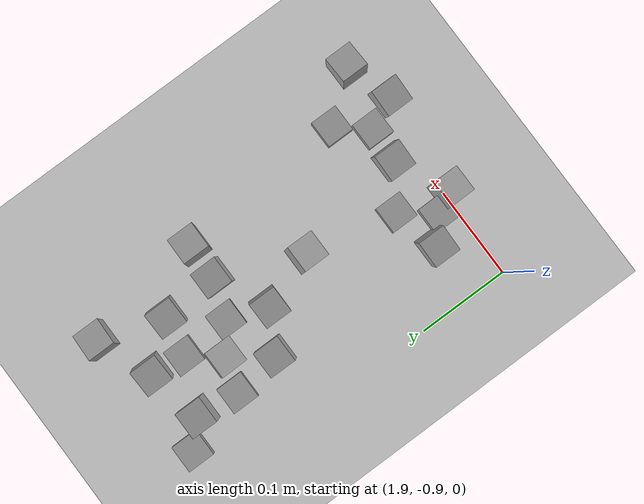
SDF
<sdf version="1.7">
 <world name="default">
  <model name="ground_plane">
   <static>1</static>
   <link name="link">
    <collision name="collision">
     <geometry><plane><normal>0 0 1</normal><size>100 100</size></plane></geometry>
     <surface><friction><ode><mu>100</mu><mu2>50</mu2></ode></friction></surface>
    </collision>
    <visual name="visual">
     <cast_shadows>0</cast_shadows>
     <geometry><plane><normal>0 0 1</normal><size>100 100</size></plane></geometry>
     <material>
      <script><uri>file://media/materials/scripts/gazebo.material</uri><name>Gazebo/Grey</name></script>
     </material>
    </visual>
   </link>
  </model>
  <model name="stone_road_2">
   <link name="link_0_clone_12">
    <inertial>
     <mass>1</mass>
     <inertia>
      <ixx>0.166667</ixx>
      <ixy>0</ixy>
      <ixz>0</ixz>
      <iyy>0.166667</iyy>
      <iyz>0</iyz>
      <izz>0.166667</izz>
     </inertia>
    </inertial>
    <pose>0.142624 -0.262715 0.003778 0.2 -0 0</pose>
    <kinematic>1</kinematic>
    <visual name="visual">
     <geometry><box><size>0.03 0.03 0.03</size></box></geometry>
     <material>
      <lighting>1</lighting>
      <script><uri>file://media/materials/scripts/gazebo.material</uri><name>Gazebo/Grey</name></script>
      <shader type="pixel"><normal_map>__default__</normal_map></shader>
      <ambient>0.3 0.3 0.3 1</ambient>
      <diffuse>0.7 0.7 0.7 1</diffuse>
      <specular>0.01 0.01 0.01 1</specular>
      <emissive>0 0 0 1</emissive>
     </material>
    </visual>
    <collision name="collision">
     <geometry><box><size>0.03 0.03 0.03</size></box></geometry>
     <surface>
      <friction>
       <ode><mu>1</mu><mu2>1</mu2><fdir1>0 0 0</fdir1><slip1>0</slip1><slip2>0</slip2></ode>
       <torsional>
        <coefficient>1</coefficient>
        <patch_radius>0</patch_radius>
        <surface_radius>0</surface_radius>
        <use_patch_radius>1</use_patch_radius>
        <ode><slip>0</slip></ode>
       </torsional>
      </friction>
      <bounce><restitution_coefficient>0</restitution_coefficient><threshold>1e+06</threshold></bounce>
      <contact>
       <collide_without_contact>0</collide_without_contact>
       <collide_without_contact_bitmask>1</collide_without_contact_bitmask>
       <collide_bitmask>1</collide_bitmask>
       <ode>
        <soft_cfm>0</soft_cfm>
        <soft_erp>0.2</soft_erp>
        <kp>1e+13</kp>
        <kd>1</kd>
        <max_vel>0.01</max_vel>
        <min_depth>0</min_depth>
       </ode>
       <bullet>
        <split_impulse>1</split_impulse>
        <split_impulse_penetration_threshold>-0.01</split_impulse_penetration_threshold>
        <soft_cfm>0</soft_cfm>
        <soft_erp>0.2</soft_erp>
        <kp>1e+13</kp>
        <kd>1</kd>
       </bullet>
      </contact>
     </surface>
    </collision>
   </link>
   <link name="link_0_clone_13">
    <inertial>
     <mass>1</mass>
     <inertia>
      <ixx>0.166667</ixx>
      <ixy>0</ixy>
      <ixz>0</ixz>
      <iyy>0.166667</iyy>
      <iyz>0</iyz>
      <izz>0.166667</izz>
     </inertia>
    </inertial>
    <pose>0.107601 -0.134881 0.003778 0.2 -0 0</pose>
    <kinematic>1</kinematic>
    <visual name="visual">
     <geometry><box><size>0.03 0.03 0.03</size></box></geometry>
     <material>
      <lighting>1</lighting>
      <script><uri>file://media/materials/scripts/gazebo.material</uri><name>Gazebo/Grey</name></script>
      <shader type="pixel"><normal_map>__default__</normal_map></shader>
      <ambient>0.3 0.3 0.3 1</ambient>
      <diffuse>0.7 0.7 0.7 1</diffuse>
      <specular>0.01 0.01 0.01 1</specular>
      <emissive>0 0 0 1</emissive>
     </material>
    </visual>
    <collision name="collision">
     <geometry><box><size>0.03 0.03 0.03</size></box></geometry>
     <surface>
      <friction>
       <ode><mu>1</mu><mu2>1</mu2><fdir1>0 0 0</fdir1><slip1>0</slip1><slip2>0</slip2></ode>
       <torsional>
        <coefficient>1</coefficient>
        <patch_radius>0</patch_radius>
        <surface_radius>0</surface_radius>
        <use_patch_radius>1</use_patch_radius>
        <ode><slip>0</slip></ode>
       </torsional>
      </friction>
      <bounce><restitution_coefficient>0</restitution_coefficient><threshold>1e+06</threshold></bounce>
      <contact>
       <collide_without_contact>0</collide_without_contact>
       <collide_without_contact_bitmask>1</collide_without_contact_bitmask>
       <collide_bitmask>1</collide_bitmask>
       <ode>
        <soft_cfm>0</soft_cfm>
        <soft_erp>0.2</soft_erp>
        <kp>1e+13</kp>
        <kd>1</kd>
        <max_vel>0.01</max_vel>
        <min_depth>0</min_depth>
       </ode>
       <bullet>
        <split_impulse>1</split_impulse>
        <split_impulse_penetration_threshold>-0.01</split_impulse_penetration_threshold>
        <soft_cfm>0</soft_cfm>
        <soft_erp>0.2</soft_erp>
        <kp>1e+13</kp>
        <kd>1</kd>
       </bullet>
      </contact>
     </surface>
    </collision>
   </link>
   <link name="link_0_clone_2_clone_2_clone_13_clone_clone_11">
    <inertial>
     <mass>1</mass>
     <inertia>
      <ixx>0.166667</ixx>
      <ixy>0</ixy>
      <ixz>0</ixz>
      <iyy>0.166667</iyy>
      <iyz>0</iyz>
      <izz>0.166667</izz>
     </inertia>
    </inertial>
    <pose>0.178889 -0.173779 0.003778 -0.1 0 0</pose>
    <kinematic>1</kinematic>
    <visual name="visual">
     <geometry><box><size>0.03 0.03 0.03</size></box></geometry>
     <material>
      <lighting>1</lighting>
      <script><uri>file://media/materials/scripts/gazebo.material</uri><name>Gazebo/Grey</name></script>
      <shader type="pixel"><normal_map>__default__</normal_map></shader>
      <ambient>0.3 0.3 0.3 1</ambient>
      <diffuse>0.7 0.7 0.7 1</diffuse>
      <specular>0.01 0.01 0.01 1</specular>
      <emissive>0 0 0 1</emissive>
     </material>
    </visual>
    <collision name="collision">
     <geometry><box><size>0.03 0.03 0.03</size></box></geometry>
     <surface>
      <friction>
       <ode><mu>1</mu><mu2>1</mu2><fdir1>0 0 0</fdir1><slip1>0</slip1><slip2>0</slip2></ode>
       <torsional>
        <coefficient>1</coefficient>
        <patch_radius>0</patch_radius>
        <surface_radius>0</surface_radius>
        <use_patch_radius>1</use_patch_radius>
        <ode><slip>0</slip></ode>
       </torsional>
      </friction>
      <bounce><restitution_coefficient>0</restitution_coefficient><threshold>1e+06</threshold></bounce>
      <contact>
       <collide_without_contact>0</collide_without_contact>
       <collide_without_contact_bitmask>1</collide_without_contact_bitmask>
       <collide_bitmask>1</collide_bitmask>
       <ode>
        <soft_cfm>0</soft_cfm>
        <soft_erp>0.2</soft_erp>
        <kp>1e+13</kp>
        <kd>1</kd>
        <max_vel>0.01</max_vel>
        <min_depth>0</min_depth>
       </ode>
       <bullet>
        <split_impulse>1</split_impulse>
        <split_impulse_penetration_threshold>-0.01</split_impulse_penetration_threshold>
        <soft_cfm>0</soft_cfm>
        <soft_erp>0.2</soft_erp>
        <kp>1e+13</kp>
        <kd>1</kd>
       </bullet>
      </contact>
     </surface>
    </collision>
   </link>
   <link name="link_0_clone_2_clone_2_clone_13_clone_clone_12">
    <inertial>
     <mass>1</mass>
     <inertia>
      <ixx>0.166667</ixx>
      <ixy>0</ixy>
      <ixz>0</ixz>
      <iyy>0.166667</iyy>
      <iyz>0</iyz>
      <izz>0.166667</izz>
     </inertia>
    </inertial>
    <pose>0.078701 -0.177208 0.003778 -0.1 0 0</pose>
    <kinematic>1</kinematic>
    <visual name="visual">
     <geometry><box><size>0.03 0.03 0.03</size></box></geometry>
     <material>
      <lighting>1</lighting>
      <script><uri>file://media/materials/scripts/gazebo.material</uri><name>Gazebo/Grey</name></script>
      <shader type="pixel"><normal_map>__default__</normal_map></shader>
      <ambient>0.3 0.3 0.3 1</ambient>
      <diffuse>0.7 0.7 0.7 1</diffuse>
      <specular>0.01 0.01 0.01 1</specular>
      <emissive>0 0 0 1</emissive>
     </material>
    </visual>
    <collision name="collision">
     <geometry><box><size>0.03 0.03 0.03</size></box></geometry>
     <surface>
      <friction>
       <ode><mu>1</mu><mu2>1</mu2><fdir1>0 0 0</fdir1><slip1>0</slip1><slip2>0</slip2></ode>
       <torsional>
        <coefficient>1</coefficient>
        <patch_radius>0</patch_radius>
        <surface_radius>0</surface_radius>
        <use_patch_radius>1</use_patch_radius>
        <ode><slip>0</slip></ode>
       </torsional>
      </friction>
      <bounce><restitution_coefficient>0</restitution_coefficient><threshold>1e+06</threshold></bounce>
      <contact>
       <collide_without_contact>0</collide_without_contact>
       <collide_without_contact_bitmask>1</collide_without_contact_bitmask>
       <collide_bitmask>1</collide_bitmask>
       <ode>
        <soft_cfm>0</soft_cfm>
        <soft_erp>0.2</soft_erp>
        <kp>1e+13</kp>
        <kd>1</kd>
        <max_vel>0.01</max_vel>
        <min_depth>0</min_depth>
       </ode>
       <bullet>
        <split_impulse>1</split_impulse>
        <split_impulse_penetration_threshold>-0.01</split_impulse_penetration_threshold>
        <soft_cfm>0</soft_cfm>
        <soft_erp>0.2</soft_erp>
        <kp>1e+13</kp>
        <kd>1</kd>
       </bullet>
      </contact>
     </surface>
    </collision>
   </link>
   <link name="link_0_clone_2_clone_2_clone_13_clone_clone_16_clone_14">
    <inertial>
     <mass>1</mass>
     <inertia>
      <ixx>0.166667</ixx>
      <ixy>0</ixy>
      <ixz>0</ixz>
      <iyy>0.166667</iyy>
      <iyz>0</iyz>
      <izz>0.166667</izz>
     </inertia>
    </inertial>
    <pose>0.051911 -0.054424 -0.006222 0 -0 0</pose>
    <kinematic>1</kinematic>
    <visual name="visual">
     <geometry><box><size>0.03 0.03 0.03</size></box></geometry>
     <material>
      <lighting>1</lighting>
      <script><uri>file://media/materials/scripts/gazebo.material</uri><name>Gazebo/Grey</name></script>
      <shader type="pixel"><normal_map>__default__</normal_map></shader>
      <ambient>0.3 0.3 0.3 1</ambient>
      <diffuse>0.7 0.7 0.7 1</diffuse>
      <specular>0.01 0.01 0.01 1</specular>
      <emissive>0 0 0 1</emissive>
     </material>
    </visual>
    <collision name="collision">
     <geometry><box><size>0.03 0.03 0.03</size></box></geometry>
     <surface>
      <friction>
       <ode><mu>1</mu><mu2>1</mu2><fdir1>0 0 0</fdir1><slip1>0</slip1><slip2>0</slip2></ode>
       <torsional>
        <coefficient>1</coefficient>
        <patch_radius>0</patch_radius>
        <surface_radius>0</surface_radius>
        <use_patch_radius>1</use_patch_radius>
        <ode><slip>0</slip></ode>
       </torsional>
      </friction>
      <bounce><restitution_coefficient>0</restitution_coefficient><threshold>1e+06</threshold></bounce>
      <contact>
       <collide_without_contact>0</collide_without_contact>
       <collide_without_contact_bitmask>1</collide_without_contact_bitmask>
       <collide_bitmask>1</collide_bitmask>
       <ode>
        <soft_cfm>0</soft_cfm>
        <soft_erp>0.2</soft_erp>
        <kp>1e+13</kp>
        <kd>1</kd>
        <max_vel>0.01</max_vel>
        <min_depth>0</min_depth>
       </ode>
       <bullet>
        <split_impulse>1</split_impulse>
        <split_impulse_penetration_threshold>-0.01</split_impulse_penetration_threshold>
        <soft_cfm>0</soft_cfm>
        <soft_erp>0.2</soft_erp>
        <kp>1e+13</kp>
        <kd>1</kd>
       </bullet>
      </contact>
     </surface>
    </collision>
   </link>
   <link name="link_0_clone_2_clone_2_clone_13_clone_clone_16_clone_15">
    <inertial>
     <mass>1</mass>
     <inertia>
      <ixx>0.166667</ixx>
      <ixy>0</ixy>
      <ixz>0</ixz>
      <iyy>0.166667</iyy>
      <iyz>0</iyz>
      <izz>0.166667</izz>
     </inertia>
    </inertial>
    <pose>0.133032 -0.103459 -0.006222 0 -0 0</pose>
    <kinematic>1</kinematic>
    <visual name="visual">
     <geometry><box><size>0.03 0.03 0.03</size></box></geometry>
     <material>
      <lighting>1</lighting>
      <script><uri>file://media/materials/scripts/gazebo.material</uri><name>Gazebo/Grey</name></script>
      <shader type="pixel"><normal_map>__default__</normal_map></shader>
      <ambient>0.3 0.3 0.3 1</ambient>
      <diffuse>0.7 0.7 0.7 1</diffuse>
      <specular>0.01 0.01 0.01 1</specular>
      <emissive>0 0 0 1</emissive>
     </material>
    </visual>
    <collision name="collision">
     <geometry><box><size>0.03 0.03 0.03</size></box></geometry>
     <surface>
      <friction>
       <ode><mu>1</mu><mu2>1</mu2><fdir1>0 0 0</fdir1><slip1>0</slip1><slip2>0</slip2></ode>
       <torsional>
        <coefficient>1</coefficient>
        <patch_radius>0</patch_radius>
        <surface_radius>0</surface_radius>
        <use_patch_radius>1</use_patch_radius>
        <ode><slip>0</slip></ode>
       </torsional>
      </friction>
      <bounce><restitution_coefficient>0</restitution_coefficient><threshold>1e+06</threshold></bounce>
      <contact>
       <collide_without_contact>0</collide_without_contact>
       <collide_without_contact_bitmask>1</collide_without_contact_bitmask>
       <collide_bitmask>1</collide_bitmask>
       <ode>
        <soft_cfm>0</soft_cfm>
        <soft_erp>0.2</soft_erp>
        <kp>1e+13</kp>
        <kd>1</kd>
        <max_vel>0.01</max_vel>
        <min_depth>0</min_depth>
       </ode>
       <bullet>
        <split_impulse>1</split_impulse>
        <split_impulse_penetration_threshold>-0.01</split_impulse_penetration_threshold>
        <soft_cfm>0</soft_cfm>
        <soft_erp>0.2</soft_erp>
        <kp>1e+13</kp>
        <kd>1</kd>
       </bullet>
      </contact>
     </surface>
    </collision>
   </link>
   <link name="link_0_clone_2_clone_2_clone_13_clone_clone_16_clone_16">
    <inertial>
     <mass>1</mass>
     <inertia>
      <ixx>0.166667</ixx>
      <ixy>0</ixy>
      <ixz>0</ixz>
      <iyy>0.166667</iyy>
      <iyz>0</iyz>
      <izz>0.166667</izz>
     </inertia>
    </inertial>
    <pose>0.071475 -0.124425 -0.006222 0 -0 0</pose>
    <kinematic>1</kinematic>
    <visual name="visual">
     <geometry><box><size>0.03 0.03 0.03</size></box></geometry>
     <material>
      <lighting>1</lighting>
      <script><uri>file://media/materials/scripts/gazebo.material</uri><name>Gazebo/Grey</name></script>
      <shader type="pixel"><normal_map>__default__</normal_map></shader>
      <ambient>0.3 0.3 0.3 1</ambient>
      <diffuse>0.7 0.7 0.7 1</diffuse>
      <specular>0.01 0.01 0.01 1</specular>
      <emissive>0 0 0 1</emissive>
     </material>
    </visual>
    <collision name="collision">
     <geometry><box><size>0.03 0.03 0.03</size></box></geometry>
     <surface>
      <friction>
       <ode><mu>1</mu><mu2>1</mu2><fdir1>0 0 0</fdir1><slip1>0</slip1><slip2>0</slip2></ode>
       <torsional>
        <coefficient>1</coefficient>
        <patch_radius>0</patch_radius>
        <surface_radius>0</surface_radius>
        <use_patch_radius>1</use_patch_radius>
        <ode><slip>0</slip></ode>
       </torsional>
      </friction>
      <bounce><restitution_coefficient>0</restitution_coefficient><threshold>1e+06</threshold></bounce>
      <contact>
       <collide_without_contact>0</collide_without_contact>
       <collide_without_contact_bitmask>1</collide_without_contact_bitmask>
       <collide_bitmask>1</collide_bitmask>
       <ode>
        <soft_cfm>0</soft_cfm>
        <soft_erp>0.2</soft_erp>
        <kp>1e+13</kp>
        <kd>1</kd>
        <max_vel>0.01</max_vel>
        <min_depth>0</min_depth>
       </ode>
       <bullet>
        <split_impulse>1</split_impulse>
        <split_impulse_penetration_threshold>-0.01</split_impulse_penetration_threshold>
        <soft_cfm>0</soft_cfm>
        <soft_erp>0.2</soft_erp>
        <kp>1e+13</kp>
        <kd>1</kd>
       </bullet>
      </contact>
     </surface>
    </collision>
   </link>
   <link name="link_0_clone_2_clone_2_clone_13_clone_clone_16_clone_18">
    <inertial>
     <mass>1</mass>
     <inertia>
      <ixx>0.166667</ixx>
      <ixy>0</ixy>
      <ixz>0</ixz>
      <iyy>0.166667</iyy>
      <iyz>0</iyz>
      <izz>0.166667</izz>
     </inertia>
    </inertial>
    <pose>0.137197 -0.158693 -0.006222 0 -0 0</pose>
    <kinematic>1</kinematic>
    <visual name="visual">
     <geometry><box><size>0.03 0.03 0.03</size></box></geometry>
     <material>
      <lighting>1</lighting>
      <script><uri>file://media/materials/scripts/gazebo.material</uri><name>Gazebo/Grey</name></script>
      <shader type="pixel"><normal_map>__default__</normal_map></shader>
      <ambient>0.3 0.3 0.3 1</ambient>
      <diffuse>0.7 0.7 0.7 1</diffuse>
      <specular>0.01 0.01 0.01 1</specular>
      <emissive>0 0 0 1</emissive>
     </material>
    </visual>
    <collision name="collision">
     <geometry><box><size>0.03 0.03 0.03</size></box></geometry>
     <surface>
      <friction>
       <ode><mu>1</mu><mu2>1</mu2><fdir1>0 0 0</fdir1><slip1>0</slip1><slip2>0</slip2></ode>
       <torsional>
        <coefficient>1</coefficient>
        <patch_radius>0</patch_radius>
        <surface_radius>0</surface_radius>
        <use_patch_radius>1</use_patch_radius>
        <ode><slip>0</slip></ode>
       </torsional>
      </friction>
      <bounce><restitution_coefficient>0</restitution_coefficient><threshold>1e+06</threshold></bounce>
      <contact>
       <collide_without_contact>0</collide_without_contact>
       <collide_without_contact_bitmask>1</collide_without_contact_bitmask>
       <collide_bitmask>1</collide_bitmask>
       <ode>
        <soft_cfm>0</soft_cfm>
        <soft_erp>0.2</soft_erp>
        <kp>1e+13</kp>
        <kd>1</kd>
        <max_vel>0.01</max_vel>
        <min_depth>0</min_depth>
       </ode>
       <bullet>
        <split_impulse>1</split_impulse>
        <split_impulse_penetration_threshold>-0.01</split_impulse_penetration_threshold>
        <soft_cfm>0</soft_cfm>
        <soft_erp>0.2</soft_erp>
        <kp>1e+13</kp>
        <kd>1</kd>
       </bullet>
      </contact>
     </surface>
    </collision>
   </link>
   <link name="link_0_clone_2_clone_2_clone_13_clone_clone_5">
    <inertial>
     <mass>1</mass>
     <inertia>
      <ixx>0.166667</ixx>
      <ixy>0</ixy>
      <ixz>0</ixz>
      <iyy>0.166667</iyy>
      <iyz>0</iyz>
      <izz>0.166667</izz>
     </inertia>
    </inertial>
    <pose>0.076743 -0.079785 0.003778 -0.1 0 0</pose>
    <kinematic>1</kinematic>
    <visual name="visual">
     <geometry><box><size>0.03 0.03 0.03</size></box></geometry>
     <material>
      <lighting>1</lighting>
      <script><uri>file://media/materials/scripts/gazebo.material</uri><name>Gazebo/Grey</name></script>
      <shader type="pixel"><normal_map>__default__</normal_map></shader>
      <ambient>0.3 0.3 0.3 1</ambient>
      <diffuse>0.7 0.7 0.7 1</diffuse>
      <specular>0.01 0.01 0.01 1</specular>
      <emissive>0 0 0 1</emissive>
     </material>
    </visual>
    <collision name="collision">
     <geometry><box><size>0.03 0.03 0.03</size></box></geometry>
     <surface>
      <friction>
       <ode><mu>1</mu><mu2>1</mu2><fdir1>0 0 0</fdir1><slip1>0</slip1><slip2>0</slip2></ode>
       <torsional>
        <coefficient>1</coefficient>
        <patch_radius>0</patch_radius>
        <surface_radius>0</surface_radius>
        <use_patch_radius>1</use_patch_radius>
        <ode><slip>0</slip></ode>
       </torsional>
      </friction>
      <bounce><restitution_coefficient>0</restitution_coefficient><threshold>1e+06</threshold></bounce>
      <contact>
       <collide_without_contact>0</collide_without_contact>
       <collide_without_contact_bitmask>1</collide_without_contact_bitmask>
       <collide_bitmask>1</collide_bitmask>
       <ode>
        <soft_cfm>0</soft_cfm>
        <soft_erp>0.2</soft_erp>
        <kp>1e+13</kp>
        <kd>1</kd>
        <max_vel>0.01</max_vel>
        <min_depth>0</min_depth>
       </ode>
       <bullet>
        <split_impulse>1</split_impulse>
        <split_impulse_penetration_threshold>-0.01</split_impulse_penetration_threshold>
        <soft_cfm>0</soft_cfm>
        <soft_erp>0.2</soft_erp>
        <kp>1e+13</kp>
        <kd>1</kd>
       </bullet>
      </contact>
     </surface>
    </collision>
   </link>
   <link name="link_0_clone_2_clone_2_clone_5">
    <inertial>
     <mass>1</mass>
     <inertia>
      <ixx>0.166667</ixx>
      <ixy>0</ixy>
      <ixz>0</ixz>
      <iyy>0.166667</iyy>
      <iyz>0</iyz>
      <izz>0.166667</izz>
     </inertia>
    </inertial>
    <pose>0.13842 -0.067468 0.003778 0 -0.15 0</pose>
    <kinematic>1</kinematic>
    <visual name="visual">
     <geometry><box><size>0.03 0.03 0.03</size></box></geometry>
     <material>
      <lighting>1</lighting>
      <script><uri>file://media/materials/scripts/gazebo.material</uri><name>Gazebo/Grey</name></script>
      <shader type="pixel"><normal_map>__default__</normal_map></shader>
      <ambient>0.3 0.3 0.3 1</ambient>
      <diffuse>0.7 0.7 0.7 1</diffuse>
      <specular>0.01 0.01 0.01 1</specular>
      <emissive>0 0 0 1</emissive>
     </material>
    </visual>
    <collision name="collision">
     <geometry><box><size>0.03 0.03 0.03</size></box></geometry>
     <surface>
      <friction>
       <ode><mu>1</mu><mu2>1</mu2><fdir1>0 0 0</fdir1><slip1>0</slip1><slip2>0</slip2></ode>
       <torsional>
        <coefficient>1</coefficient>
        <patch_radius>0</patch_radius>
        <surface_radius>0</surface_radius>
        <use_patch_radius>1</use_patch_radius>
        <ode><slip>0</slip></ode>
       </torsional>
      </friction>
      <bounce><restitution_coefficient>0</restitution_coefficient><threshold>1e+06</threshold></bounce>
      <contact>
       <collide_without_contact>0</collide_without_contact>
       <collide_without_contact_bitmask>1</collide_without_contact_bitmask>
       <collide_bitmask>1</collide_bitmask>
       <ode>
        <soft_cfm>0</soft_cfm>
        <soft_erp>0.2</soft_erp>
        <kp>1e+13</kp>
        <kd>1</kd>
        <max_vel>0.01</max_vel>
        <min_depth>0</min_depth>
       </ode>
       <bullet>
        <split_impulse>1</split_impulse>
        <split_impulse_penetration_threshold>-0.01</split_impulse_penetration_threshold>
        <soft_cfm>0</soft_cfm>
        <soft_erp>0.2</soft_erp>
        <kp>1e+13</kp>
        <kd>1</kd>
       </bullet>
      </contact>
     </surface>
    </collision>
   </link>
   <link name="link_0_clone_2_clone_2_clone_7">
    <inertial>
     <mass>1</mass>
     <inertia>
      <ixx>0.166667</ixx>
      <ixy>0</ixy>
      <ixz>0</ixz>
      <iyy>0.166667</iyy>
      <iyz>0</iyz>
      <izz>0.166667</izz>
     </inertia>
    </inertial>
    <pose>0.175499 -0.112442 0.003778 0 -0.15 0</pose>
    <kinematic>1</kinematic>
    <visual name="visual">
     <geometry><box><size>0.03 0.03 0.03</size></box></geometry>
     <material>
      <lighting>1</lighting>
      <script><uri>file://media/materials/scripts/gazebo.material</uri><name>Gazebo/Grey</name></script>
      <shader type="pixel"><normal_map>__default__</normal_map></shader>
      <ambient>0.3 0.3 0.3 1</ambient>
      <diffuse>0.7 0.7 0.7 1</diffuse>
      <specular>0.01 0.01 0.01 1</specular>
      <emissive>0 0 0 1</emissive>
     </material>
    </visual>
    <collision name="collision">
     <geometry><box><size>0.03 0.03 0.03</size></box></geometry>
     <surface>
      <friction>
       <ode><mu>1</mu><mu2>1</mu2><fdir1>0 0 0</fdir1><slip1>0</slip1><slip2>0</slip2></ode>
       <torsional>
        <coefficient>1</coefficient>
        <patch_radius>0</patch_radius>
        <surface_radius>0</surface_radius>
        <use_patch_radius>1</use_patch_radius>
        <ode><slip>0</slip></ode>
       </torsional>
      </friction>
      <bounce><restitution_coefficient>0</restitution_coefficient><threshold>1e+06</threshold></bounce>
      <contact>
       <collide_without_contact>0</collide_without_contact>
       <collide_without_contact_bitmask>1</collide_without_contact_bitmask>
       <collide_bitmask>1</collide_bitmask>
       <ode>
        <soft_cfm>0</soft_cfm>
        <soft_erp>0.2</soft_erp>
        <kp>1e+13</kp>
        <kd>1</kd>
        <max_vel>0.01</max_vel>
        <min_depth>0</min_depth>
       </ode>
       <bullet>
        <split_impulse>1</split_impulse>
        <split_impulse_penetration_threshold>-0.01</split_impulse_penetration_threshold>
        <soft_cfm>0</soft_cfm>
        <soft_erp>0.2</soft_erp>
        <kp>1e+13</kp>
        <kd>1</kd>
       </bullet>
      </contact>
     </surface>
    </collision>
   </link>
   <link name="link_0_clone_2_clone_2_clone_8">
    <inertial>
     <mass>1</mass>
     <inertia>
      <ixx>0.166667</ixx>
      <ixy>0</ixy>
      <ixz>0</ixz>
      <iyy>0.166667</iyy>
      <iyz>0</iyz>
      <izz>0.166667</izz>
     </inertia>
    </inertial>
    <pose>0.122141 -0.201696 0.003778 0 -0.15 0</pose>
    <kinematic>1</kinematic>
    <visual name="visual">
     <geometry><box><size>0.03 0.03 0.03</size></box></geometry>
     <material>
      <lighting>1</lighting>
      <script><uri>file://media/materials/scripts/gazebo.material</uri><name>Gazebo/Grey</name></script>
      <shader type="pixel"><normal_map>__default__</normal_map></shader>
      <ambient>0.3 0.3 0.3 1</ambient>
      <diffuse>0.7 0.7 0.7 1</diffuse>
      <specular>0.01 0.01 0.01 1</specular>
      <emissive>0 0 0 1</emissive>
     </material>
    </visual>
    <collision name="collision">
     <geometry><box><size>0.03 0.03 0.03</size></box></geometry>
     <surface>
      <friction>
       <ode><mu>1</mu><mu2>1</mu2><fdir1>0 0 0</fdir1><slip1>0</slip1><slip2>0</slip2></ode>
       <torsional>
        <coefficient>1</coefficient>
        <patch_radius>0</patch_radius>
        <surface_radius>0</surface_radius>
        <use_patch_radius>1</use_patch_radius>
        <ode><slip>0</slip></ode>
       </torsional>
      </friction>
      <bounce><restitution_coefficient>0</restitution_coefficient><threshold>1e+06</threshold></bounce>
      <contact>
       <collide_without_contact>0</collide_without_contact>
       <collide_without_contact_bitmask>1</collide_without_contact_bitmask>
       <collide_bitmask>1</collide_bitmask>
       <ode>
        <soft_cfm>0</soft_cfm>
        <soft_erp>0.2</soft_erp>
        <kp>1e+13</kp>
        <kd>1</kd>
        <max_vel>0.01</max_vel>
        <min_depth>0</min_depth>
       </ode>
       <bullet>
        <split_impulse>1</split_impulse>
        <split_impulse_penetration_threshold>-0.01</split_impulse_penetration_threshold>
        <soft_cfm>0</soft_cfm>
        <soft_erp>0.2</soft_erp>
        <kp>1e+13</kp>
        <kd>1</kd>
       </bullet>
      </contact>
     </surface>
    </collision>
   </link>
   <link name="link_0_clone_2_clone_8">
    <inertial>
     <mass>1</mass>
     <inertia>
      <ixx>0.166667</ixx>
      <ixy>0</ixy>
      <ixz>0</ixz>
      <iyy>0.166667</iyy>
      <iyz>0</iyz>
      <izz>0.166667</izz>
     </inertia>
    </inertial>
    <pose>0.197388 -0.042712 0.003778 0 0.15 0</pose>
    <kinematic>1</kinematic>
    <visual name="visual">
     <geometry><box><size>0.03 0.03 0.03</size></box></geometry>
     <material>
      <lighting>1</lighting>
      <script><uri>file://media/materials/scripts/gazebo.material</uri><name>Gazebo/Grey</name></script>
      <shader type="pixel"><normal_map>__default__</normal_map></shader>
      <ambient>0.3 0.3 0.3 1</ambient>
      <diffuse>0.7 0.7 0.7 1</diffuse>
      <specular>0.01 0.01 0.01 1</specular>
      <emissive>0 0 0 1</emissive>
     </material>
    </visual>
    <collision name="collision">
     <geometry><box><size>0.03 0.03 0.03</size></box></geometry>
     <surface>
      <friction>
       <ode><mu>1</mu><mu2>1</mu2><fdir1>0 0 0</fdir1><slip1>0</slip1><slip2>0</slip2></ode>
       <torsional>
        <coefficient>1</coefficient>
        <patch_radius>0</patch_radius>
        <surface_radius>0</surface_radius>
        <use_patch_radius>1</use_patch_radius>
        <ode><slip>0</slip></ode>
       </torsional>
      </friction>
      <bounce><restitution_coefficient>0</restitution_coefficient><threshold>1e+06</threshold></bounce>
      <contact>
       <collide_without_contact>0</collide_without_contact>
       <collide_without_contact_bitmask>1</collide_without_contact_bitmask>
       <collide_bitmask>1</collide_bitmask>
       <ode>
        <soft_cfm>0</soft_cfm>
        <soft_erp>0.2</soft_erp>
        <kp>1e+13</kp>
        <kd>1</kd>
        <max_vel>0.01</max_vel>
        <min_depth>0</min_depth>
       </ode>
       <bullet>
        <split_impulse>1</split_impulse>
        <split_impulse_penetration_threshold>-0.01</split_impulse_penetration_threshold>
        <soft_cfm>0</soft_cfm>
        <soft_erp>0.2</soft_erp>
        <kp>1e+13</kp>
        <kd>1</kd>
       </bullet>
      </contact>
     </surface>
    </collision>
   </link>
   <static>0</static>
   <pose>1.89226 -0.488312 -0 0 -0 0</pose>
  </model>
  <model name="stone_road_6">
   <link name="link_0_clone_2_clone_5">
    <inertial>
     <mass>1</mass>
     <inertia>
      <ixx>0.166667</ixx>
      <ixy>0</ixy>
      <ixz>0</ixz>
      <iyy>0.166667</iyy>
      <iyz>0</iyz>
      <izz>0.166667</izz>
     </inertia>
    </inertial>
    <pose>-0.268485 0.053169 0.003778 0 0.15 0</pose>
    <kinematic>1</kinematic>
    <visual name="visual">
     <geometry><box><size>0.03 0.03 0.03</size></box></geometry>
     <material>
      <lighting>1</lighting>
      <script><uri>file://media/materials/scripts/gazebo.material</uri><name>Gazebo/Grey</name></script>
      <shader type="pixel"><normal_map>__default__</normal_map></shader>
      <ambient>0.3 0.3 0.3 1</ambient>
      <diffuse>0.7 0.7 0.7 1</diffuse>
      <specular>0.01 0.01 0.01 1</specular>
      <emissive>0 0 0 1</emissive>
     </material>
    </visual>
    <collision name="collision">
     <geometry><box><size>0.03 0.03 0.03</size></box></geometry>
     <surface>
      <friction>
       <ode><mu>1</mu><mu2>1</mu2><fdir1>0 0 0</fdir1><slip1>0</slip1><slip2>0</slip2></ode>
       <torsional>
        <coefficient>1</coefficient>
        <patch_radius>0</patch_radius>
        <surface_radius>0</surface_radius>
        <use_patch_radius>1</use_patch_radius>
        <ode><slip>0</slip></ode>
       </torsional>
      </friction>
      <bounce><restitution_coefficient>0</restitution_coefficient><threshold>1e+06</threshold></bounce>
      <contact>
       <collide_without_contact>0</collide_without_contact>
       <collide_without_contact_bitmask>1</collide_without_contact_bitmask>
       <collide_bitmask>1</collide_bitmask>
       <ode>
        <soft_cfm>0</soft_cfm>
        <soft_erp>0.2</soft_erp>
        <kp>1e+13</kp>
        <kd>1</kd>
        <max_vel>0.01</max_vel>
        <min_depth>0</min_depth>
       </ode>
       <bullet>
        <split_impulse>1</split_impulse>
        <split_impulse_penetration_threshold>-0.01</split_impulse_penetration_threshold>
        <soft_cfm>0</soft_cfm>
        <soft_erp>0.2</soft_erp>
        <kp>1e+13</kp>
        <kd>1</kd>
       </bullet>
      </contact>
     </surface>
    </collision>
   </link>
   <static>0</static>
   <pose>2.379 -0.715905 -0 0 -0 0</pose>
  </model>
  <model name="stone_road_10">
   <link name="link_0_clone_10">
    <inertial>
     <mass>1</mass>
     <inertia>
      <ixx>0.166667</ixx>
      <ixy>0</ixy>
      <ixz>0</ixz>
      <iyy>0.166667</iyy>
      <iyz>0</iyz>
      <izz>0.166667</izz>
     </inertia>
    </inertial>
    <pose>-0.01295 0.17123 0.003778 0.2 -0 0</pose>
    <kinematic>1</kinematic>
    <visual name="visual">
     <geometry><box><size>0.03 0.03 0.03</size></box></geometry>
     <material>
      <lighting>1</lighting>
      <script><uri>file://media/materials/scripts/gazebo.material</uri><name>Gazebo/Grey</name></script>
      <shader type="pixel"><normal_map>__default__</normal_map></shader>
      <ambient>0.3 0.3 0.3 1</ambient>
      <diffuse>0.7 0.7 0.7 1</diffuse>
      <specular>0.01 0.01 0.01 1</specular>
      <emissive>0 0 0 1</emissive>
     </material>
    </visual>
    <collision name="collision">
     <geometry><box><size>0.03 0.03 0.03</size></box></geometry>
     <surface>
      <friction>
       <ode><mu>1</mu><mu2>1</mu2><fdir1>0 0 0</fdir1><slip1>0</slip1><slip2>0</slip2></ode>
       <torsional>
        <coefficient>1</coefficient>
        <patch_radius>0</patch_radius>
        <surface_radius>0</surface_radius>
        <use_patch_radius>1</use_patch_radius>
        <ode><slip>0</slip></ode>
       </torsional>
      </friction>
      <bounce><restitution_coefficient>0</restitution_coefficient><threshold>1e+06</threshold></bounce>
      <contact>
       <collide_without_contact>0</collide_without_contact>
       <collide_without_contact_bitmask>1</collide_without_contact_bitmask>
       <collide_bitmask>1</collide_bitmask>
       <ode>
        <soft_cfm>0</soft_cfm>
        <soft_erp>0.2</soft_erp>
        <kp>1e+13</kp>
        <kd>1</kd>
        <max_vel>0.01</max_vel>
        <min_depth>0</min_depth>
       </ode>
       <bullet>
        <split_impulse>1</split_impulse>
        <split_impulse_penetration_threshold>-0.01</split_impulse_penetration_threshold>
        <soft_cfm>0</soft_cfm>
        <soft_erp>0.2</soft_erp>
        <kp>1e+13</kp>
        <kd>1</kd>
       </bullet>
      </contact>
     </surface>
    </collision>
   </link>
   <link name="link_0_clone_2_clone_2_clone_10">
    <inertial>
     <mass>1</mass>
     <inertia>
      <ixx>0.166667</ixx>
      <ixy>0</ixy>
      <ixz>0</ixz>
      <iyy>0.166667</iyy>
      <iyz>0</iyz>
      <izz>0.166667</izz>
     </inertia>
    </inertial>
    <pose>0.09869 0.163436 0.003778 0 -0.15 0</pose>
    <kinematic>1</kinematic>
    <visual name="visual">
     <geometry><box><size>0.03 0.03 0.03</size></box></geometry>
     <material>
      <lighting>1</lighting>
      <script><uri>file://media/materials/scripts/gazebo.material</uri><name>Gazebo/Grey</name></script>
      <shader type="pixel"><normal_map>__default__</normal_map></shader>
      <ambient>0.3 0.3 0.3 1</ambient>
      <diffuse>0.7 0.7 0.7 1</diffuse>
      <specular>0.01 0.01 0.01 1</specular>
      <emissive>0 0 0 1</emissive>
     </material>
    </visual>
    <collision name="collision">
     <geometry><box><size>0.03 0.03 0.03</size></box></geometry>
     <surface>
      <friction>
       <ode><mu>1</mu><mu2>1</mu2><fdir1>0 0 0</fdir1><slip1>0</slip1><slip2>0</slip2></ode>
       <torsional>
        <coefficient>1</coefficient>
        <patch_radius>0</patch_radius>
        <surface_radius>0</surface_radius>
        <use_patch_radius>1</use_patch_radius>
        <ode><slip>0</slip></ode>
       </torsional>
      </friction>
      <bounce><restitution_coefficient>0</restitution_coefficient><threshold>1e+06</threshold></bounce>
      <contact>
       <collide_without_contact>0</collide_without_contact>
       <collide_without_contact_bitmask>1</collide_without_contact_bitmask>
       <collide_bitmask>1</collide_bitmask>
       <ode>
        <soft_cfm>0</soft_cfm>
        <soft_erp>0.2</soft_erp>
        <kp>1e+13</kp>
        <kd>1</kd>
        <max_vel>0.01</max_vel>
        <min_depth>0</min_depth>
       </ode>
       <bullet>
        <split_impulse>1</split_impulse>
        <split_impulse_penetration_threshold>-0.01</split_impulse_penetration_threshold>
        <soft_cfm>0</soft_cfm>
        <soft_erp>0.2</soft_erp>
        <kp>1e+13</kp>
        <kd>1</kd>
       </bullet>
      </contact>
     </surface>
    </collision>
   </link>
   <link name="link_0_clone_2_clone_2_clone_11">
    <inertial>
     <mass>1</mass>
     <inertia>
      <ixx>0.166667</ixx>
      <ixy>0</ixy>
      <ixz>0</ixz>
      <iyy>0.166667</iyy>
      <iyz>0</iyz>
      <izz>0.166667</izz>
     </inertia>
    </inertial>
    <pose>-0.050382 0.216558 0.003778 0 -0.15 0</pose>
    <kinematic>1</kinematic>
    <visual name="visual">
     <geometry><box><size>0.03 0.03 0.03</size></box></geometry>
     <material>
      <lighting>1</lighting>
      <script><uri>file://media/materials/scripts/gazebo.material</uri><name>Gazebo/Grey</name></script>
      <shader type="pixel"><normal_map>__default__</normal_map></shader>
      <ambient>0.3 0.3 0.3 1</ambient>
      <diffuse>0.7 0.7 0.7 1</diffuse>
      <specular>0.01 0.01 0.01 1</specular>
      <emissive>0 0 0 1</emissive>
     </material>
    </visual>
    <collision name="collision">
     <geometry><box><size>0.03 0.03 0.03</size></box></geometry>
     <surface>
      <friction>
       <ode><mu>1</mu><mu2>1</mu2><fdir1>0 0 0</fdir1><slip1>0</slip1><slip2>0</slip2></ode>
       <torsional>
        <coefficient>1</coefficient>
        <patch_radius>0</patch_radius>
        <surface_radius>0</surface_radius>
        <use_patch_radius>1</use_patch_radius>
        <ode><slip>0</slip></ode>
       </torsional>
      </friction>
      <bounce><restitution_coefficient>0</restitution_coefficient><threshold>1e+06</threshold></bounce>
      <contact>
       <collide_without_contact>0</collide_without_contact>
       <collide_without_contact_bitmask>1</collide_without_contact_bitmask>
       <collide_bitmask>1</collide_bitmask>
       <ode>
        <soft_cfm>0</soft_cfm>
        <soft_erp>0.2</soft_erp>
        <kp>1e+13</kp>
        <kd>1</kd>
        <max_vel>0.01</max_vel>
        <min_depth>0</min_depth>
       </ode>
       <bullet>
        <split_impulse>1</split_impulse>
        <split_impulse_penetration_threshold>-0.01</split_impulse_penetration_threshold>
        <soft_cfm>0</soft_cfm>
        <soft_erp>0.2</soft_erp>
        <kp>1e+13</kp>
        <kd>1</kd>
       </bullet>
      </contact>
     </surface>
    </collision>
   </link>
   <link name="link_0_clone_2_clone_2_clone_12">
    <inertial>
     <mass>1</mass>
     <inertia>
      <ixx>0.166667</ixx>
      <ixy>0</ixy>
      <ixz>0</ixz>
      <iyy>0.166667</iyy>
      <iyz>0</iyz>
      <izz>0.166667</izz>
     </inertia>
    </inertial>
    <pose>0.044693 0.200081 0.003778 0 -0.15 0</pose>
    <kinematic>1</kinematic>
    <visual name="visual">
     <geometry><box><size>0.03 0.03 0.03</size></box></geometry>
     <material>
      <lighting>1</lighting>
      <script><uri>file://media/materials/scripts/gazebo.material</uri><name>Gazebo/Grey</name></script>
      <shader type="pixel"><normal_map>__default__</normal_map></shader>
      <ambient>0.3 0.3 0.3 1</ambient>
      <diffuse>0.7 0.7 0.7 1</diffuse>
      <specular>0.01 0.01 0.01 1</specular>
      <emissive>0 0 0 1</emissive>
     </material>
    </visual>
    <collision name="collision">
     <geometry><box><size>0.03 0.03 0.03</size></box></geometry>
     <surface>
      <friction>
       <ode><mu>1</mu><mu2>1</mu2><fdir1>0 0 0</fdir1><slip1>0</slip1><slip2>0</slip2></ode>
       <torsional>
        <coefficient>1</coefficient>
        <patch_radius>0</patch_radius>
        <surface_radius>0</surface_radius>
        <use_patch_radius>1</use_patch_radius>
        <ode><slip>0</slip></ode>
       </torsional>
      </friction>
      <bounce><restitution_coefficient>0</restitution_coefficient><threshold>1e+06</threshold></bounce>
      <contact>
       <collide_without_contact>0</collide_without_contact>
       <collide_without_contact_bitmask>1</collide_without_contact_bitmask>
       <collide_bitmask>1</collide_bitmask>
       <ode>
        <soft_cfm>0</soft_cfm>
        <soft_erp>0.2</soft_erp>
        <kp>1e+13</kp>
        <kd>1</kd>
        <max_vel>0.01</max_vel>
        <min_depth>0</min_depth>
       </ode>
       <bullet>
        <split_impulse>1</split_impulse>
        <split_impulse_penetration_threshold>-0.01</split_impulse_penetration_threshold>
        <soft_cfm>0</soft_cfm>
        <soft_erp>0.2</soft_erp>
        <kp>1e+13</kp>
        <kd>1</kd>
       </bullet>
      </contact>
     </surface>
    </collision>
   </link>
   <link name="link_0_clone_2_clone_2_clone_13_clone_clone_16">
    <inertial>
     <mass>1</mass>
     <inertia>
      <ixx>0.166667</ixx>
      <ixy>0</ixy>
      <ixz>0</ixz>
      <iyy>0.166667</iyy>
      <iyz>0</iyz>
      <izz>0.166667</izz>
     </inertia>
    </inertial>
    <pose>0.108948 0.22849 -0.006222 0 -0 0</pose>
    <kinematic>1</kinematic>
    <visual name="visual">
     <geometry><box><size>0.03 0.03 0.03</size></box></geometry>
     <material>
      <lighting>1</lighting>
      <script><uri>file://media/materials/scripts/gazebo.material</uri><name>Gazebo/Grey</name></script>
      <shader type="pixel"><normal_map>__default__</normal_map></shader>
      <ambient>0.3 0.3 0.3 1</ambient>
      <diffuse>0.7 0.7 0.7 1</diffuse>
      <specular>0.01 0.01 0.01 1</specular>
      <emissive>0 0 0 1</emissive>
     </material>
    </visual>
    <collision name="collision">
     <geometry><box><size>0.03 0.03 0.03</size></box></geometry>
     <surface>
      <friction>
       <ode><mu>1</mu><mu2>1</mu2><fdir1>0 0 0</fdir1><slip1>0</slip1><slip2>0</slip2></ode>
       <torsional>
        <coefficient>1</coefficient>
        <patch_radius>0</patch_radius>
        <surface_radius>0</surface_radius>
        <use_patch_radius>1</use_patch_radius>
        <ode><slip>0</slip></ode>
       </torsional>
      </friction>
      <bounce><restitution_coefficient>0</restitution_coefficient><threshold>1e+06</threshold></bounce>
      <contact>
       <collide_without_contact>0</collide_without_contact>
       <collide_without_contact_bitmask>1</collide_without_contact_bitmask>
       <collide_bitmask>1</collide_bitmask>
       <ode>
        <soft_cfm>0</soft_cfm>
        <soft_erp>0.2</soft_erp>
        <kp>1e+13</kp>
        <kd>1</kd>
        <max_vel>0.01</max_vel>
        <min_depth>0</min_depth>
       </ode>
       <bullet>
        <split_impulse>1</split_impulse>
        <split_impulse_penetration_threshold>-0.01</split_impulse_penetration_threshold>
        <soft_cfm>0</soft_cfm>
        <soft_erp>0.2</soft_erp>
        <kp>1e+13</kp>
        <kd>1</kd>
       </bullet>
      </contact>
     </surface>
    </collision>
   </link>
   <link name="link_0_clone_2_clone_2_clone_13_clone_clone_16_clone_22">
    <inertial>
     <mass>1</mass>
     <inertia>
      <ixx>0.166667</ixx>
      <ixy>0</ixy>
      <ixz>0</ixz>
      <iyy>0.166667</iyy>
      <iyz>0</iyz>
      <izz>0.166667</izz>
     </inertia>
    </inertial>
    <pose>-0.025872 0.194724 -0.006222 0 -0 0</pose>
    <kinematic>1</kinematic>
    <visual name="visual">
     <geometry><box><size>0.03 0.03 0.03</size></box></geometry>
     <material>
      <lighting>1</lighting>
      <script><uri>file://media/materials/scripts/gazebo.material</uri><name>Gazebo/Grey</name></script>
      <shader type="pixel"><normal_map>__default__</normal_map></shader>
      <ambient>0.3 0.3 0.3 1</ambient>
      <diffuse>0.7 0.7 0.7 1</diffuse>
      <specular>0.01 0.01 0.01 1</specular>
      <emissive>0 0 0 1</emissive>
     </material>
    </visual>
    <collision name="collision">
     <geometry><box><size>0.03 0.03 0.03</size></box></geometry>
     <surface>
      <friction>
       <ode><mu>1</mu><mu2>1</mu2><fdir1>0 0 0</fdir1><slip1>0</slip1><slip2>0</slip2></ode>
       <torsional>
        <coefficient>1</coefficient>
        <patch_radius>0</patch_radius>
        <surface_radius>0</surface_radius>
        <use_patch_radius>1</use_patch_radius>
        <ode><slip>0</slip></ode>
       </torsional>
      </friction>
      <bounce><restitution_coefficient>0</restitution_coefficient><threshold>1e+06</threshold></bounce>
      <contact>
       <collide_without_contact>0</collide_without_contact>
       <collide_without_contact_bitmask>1</collide_without_contact_bitmask>
       <collide_bitmask>1</collide_bitmask>
       <ode>
        <soft_cfm>0</soft_cfm>
        <soft_erp>0.2</soft_erp>
        <kp>1e+13</kp>
        <kd>1</kd>
        <max_vel>0.01</max_vel>
        <min_depth>0</min_depth>
       </ode>
       <bullet>
        <split_impulse>1</split_impulse>
        <split_impulse_penetration_threshold>-0.01</split_impulse_penetration_threshold>
        <soft_cfm>0</soft_cfm>
        <soft_erp>0.2</soft_erp>
        <kp>1e+13</kp>
        <kd>1</kd>
       </bullet>
      </contact>
     </surface>
    </collision>
   </link>
   <link name="link_0_clone_2_clone_2_clone_13_clone_clone_16_clone_23">
    <inertial>
     <mass>1</mass>
     <inertia>
      <ixx>0.166667</ixx>
      <ixy>0</ixy>
      <ixz>0</ixz>
      <iyy>0.166667</iyy>
      <iyz>0</iyz>
      <izz>0.166667</izz>
     </inertia>
    </inertial>
    <pose>0.000385 0.228664 -0.006222 0 -0 0</pose>
    <kinematic>1</kinematic>
    <visual name="visual">
     <geometry><box><size>0.03 0.03 0.03</size></box></geometry>
     <material>
      <lighting>1</lighting>
      <script><uri>file://media/materials/scripts/gazebo.material</uri><name>Gazebo/Grey</name></script>
      <shader type="pixel"><normal_map>__default__</normal_map></shader>
      <ambient>0.3 0.3 0.3 1</ambient>
      <diffuse>0.7 0.7 0.7 1</diffuse>
      <specular>0.01 0.01 0.01 1</specular>
      <emissive>0 0 0 1</emissive>
     </material>
    </visual>
    <collision name="collision">
     <geometry><box><size>0.03 0.03 0.03</size></box></geometry>
     <surface>
      <friction>
       <ode><mu>1</mu><mu2>1</mu2><fdir1>0 0 0</fdir1><slip1>0</slip1><slip2>0</slip2></ode>
       <torsional>
        <coefficient>1</coefficient>
        <patch_radius>0</patch_radius>
        <surface_radius>0</surface_radius>
        <use_patch_radius>1</use_patch_radius>
        <ode><slip>0</slip></ode>
       </torsional>
      </friction>
      <bounce><restitution_coefficient>0</restitution_coefficient><threshold>1e+06</threshold></bounce>
      <contact>
       <collide_without_contact>0</collide_without_contact>
       <collide_without_contact_bitmask>1</collide_without_contact_bitmask>
       <collide_bitmask>1</collide_bitmask>
       <ode>
        <soft_cfm>0</soft_cfm>
        <soft_erp>0.2</soft_erp>
        <kp>1e+13</kp>
        <kd>1</kd>
        <max_vel>0.01</max_vel>
        <min_depth>0</min_depth>
       </ode>
       <bullet>
        <split_impulse>1</split_impulse>
        <split_impulse_penetration_threshold>-0.01</split_impulse_penetration_threshold>
        <soft_cfm>0</soft_cfm>
        <soft_erp>0.2</soft_erp>
        <kp>1e+13</kp>
        <kd>1</kd>
       </bullet>
      </contact>
     </surface>
    </collision>
   </link>
   <link name="link_0_clone_2_clone_2_clone_13_clone_clone_16_clone_24">
    <inertial>
     <mass>1</mass>
     <inertia>
      <ixx>0.166667</ixx>
      <ixy>0</ixy>
      <ixz>0</ixz>
      <iyy>0.166667</iyy>
      <iyz>0</iyz>
      <izz>0.166667</izz>
     </inertia>
    </inertial>
    <pose>0.08246 0.196776 -0.006222 0 -0 0</pose>
    <kinematic>1</kinematic>
    <visual name="visual">
     <geometry><box><size>0.03 0.03 0.03</size></box></geometry>
     <material>
      <lighting>1</lighting>
      <script><uri>file://media/materials/scripts/gazebo.material</uri><name>Gazebo/Grey</name></script>
      <shader type="pixel"><normal_map>__default__</normal_map></shader>
      <ambient>0.3 0.3 0.3 1</ambient>
      <diffuse>0.7 0.7 0.7 1</diffuse>
      <specular>0.01 0.01 0.01 1</specular>
      <emissive>0 0 0 1</emissive>
     </material>
    </visual>
    <collision name="collision">
     <geometry><box><size>0.03 0.03 0.03</size></box></geometry>
     <surface>
      <friction>
       <ode><mu>1</mu><mu2>1</mu2><fdir1>0 0 0</fdir1><slip1>0</slip1><slip2>0</slip2></ode>
       <torsional>
        <coefficient>1</coefficient>
        <patch_radius>0</patch_radius>
        <surface_radius>0</surface_radius>
        <use_patch_radius>1</use_patch_radius>
        <ode><slip>0</slip></ode>
       </torsional>
      </friction>
      <bounce><restitution_coefficient>0</restitution_coefficient><threshold>1e+06</threshold></bounce>
      <contact>
       <collide_without_contact>0</collide_without_contact>
       <collide_without_contact_bitmask>1</collide_without_contact_bitmask>
       <collide_bitmask>1</collide_bitmask>
       <ode>
        <soft_cfm>0</soft_cfm>
        <soft_erp>0.2</soft_erp>
        <kp>1e+13</kp>
        <kd>1</kd>
        <max_vel>0.01</max_vel>
        <min_depth>0</min_depth>
       </ode>
       <bullet>
        <split_impulse>1</split_impulse>
        <split_impulse_penetration_threshold>-0.01</split_impulse_penetration_threshold>
        <soft_cfm>0</soft_cfm>
        <soft_erp>0.2</soft_erp>
        <kp>1e+13</kp>
        <kd>1</kd>
       </bullet>
      </contact>
     </surface>
    </collision>
   </link>
   <link name="link_0_clone_2_clone_9">
    <inertial>
     <mass>1</mass>
     <inertia>
      <ixx>0.166667</ixx>
      <ixy>0</ixy>
      <ixz>0</ixz>
      <iyy>0.166667</iyy>
      <iyz>0</iyz>
      <izz>0.166667</izz>
     </inertia>
    </inertial>
    <pose>0.148876 0.179752 0.003778 0 0.15 0</pose>
    <kinematic>1</kinematic>
    <visual name="visual">
     <geometry><box><size>0.03 0.03 0.03</size></box></geometry>
     <material>
      <lighting>1</lighting>
      <script><uri>file://media/materials/scripts/gazebo.material</uri><name>Gazebo/Grey</name></script>
      <shader type="pixel"><normal_map>__default__</normal_map></shader>
      <ambient>0.3 0.3 0.3 1</ambient>
      <diffuse>0.7 0.7 0.7 1</diffuse>
      <specular>0.01 0.01 0.01 1</specular>
      <emissive>0 0 0 1</emissive>
     </material>
    </visual>
    <collision name="collision">
     <geometry><box><size>0.03 0.03 0.03</size></box></geometry>
     <surface>
      <friction>
       <ode><mu>1</mu><mu2>1</mu2><fdir1>0 0 0</fdir1><slip1>0</slip1><slip2>0</slip2></ode>
       <torsional>
        <coefficient>1</coefficient>
        <patch_radius>0</patch_radius>
        <surface_radius>0</surface_radius>
        <use_patch_radius>1</use_patch_radius>
        <ode><slip>0</slip></ode>
       </torsional>
      </friction>
      <bounce><restitution_coefficient>0</restitution_coefficient><threshold>1e+06</threshold></bounce>
      <contact>
       <collide_without_contact>0</collide_without_contact>
       <collide_without_contact_bitmask>1</collide_without_contact_bitmask>
       <collide_bitmask>1</collide_bitmask>
       <ode>
        <soft_cfm>0</soft_cfm>
        <soft_erp>0.2</soft_erp>
        <kp>1e+13</kp>
        <kd>1</kd>
        <max_vel>0.01</max_vel>
        <min_depth>0</min_depth>
       </ode>
       <bullet>
        <split_impulse>1</split_impulse>
        <split_impulse_penetration_threshold>-0.01</split_impulse_penetration_threshold>
        <soft_cfm>0</soft_cfm>
        <soft_erp>0.2</soft_erp>
        <kp>1e+13</kp>
        <kd>1</kd>
       </bullet>
      </contact>
     </surface>
    </collision>
   </link>
   <static>0</static>
   <pose>2.01299 -1.07769 -0 0 -0 0</pose>
  </model>
 </world>
</sdf>
